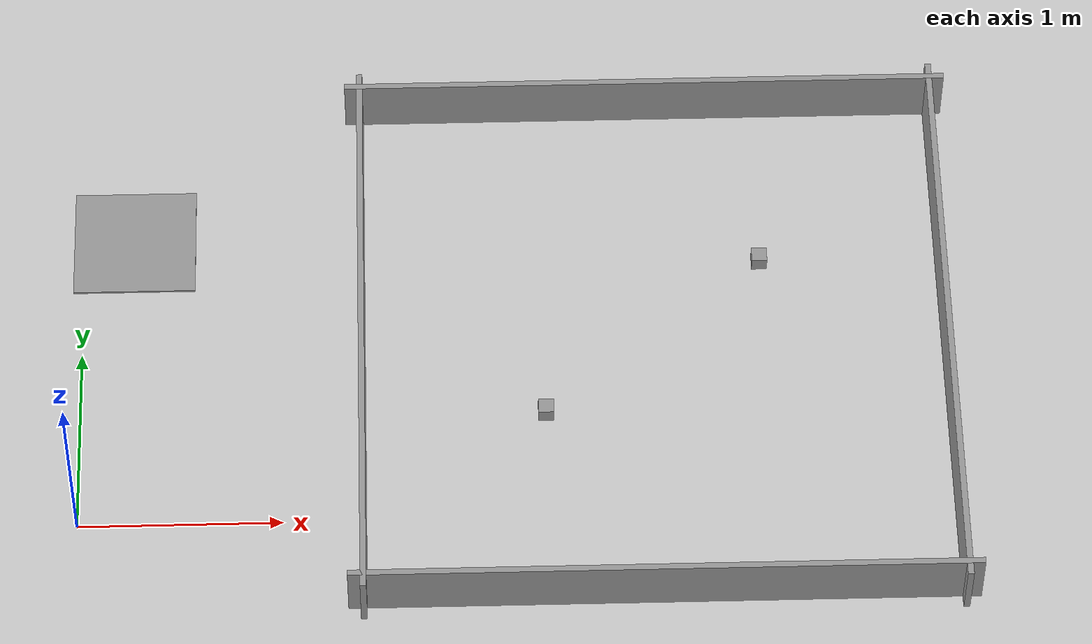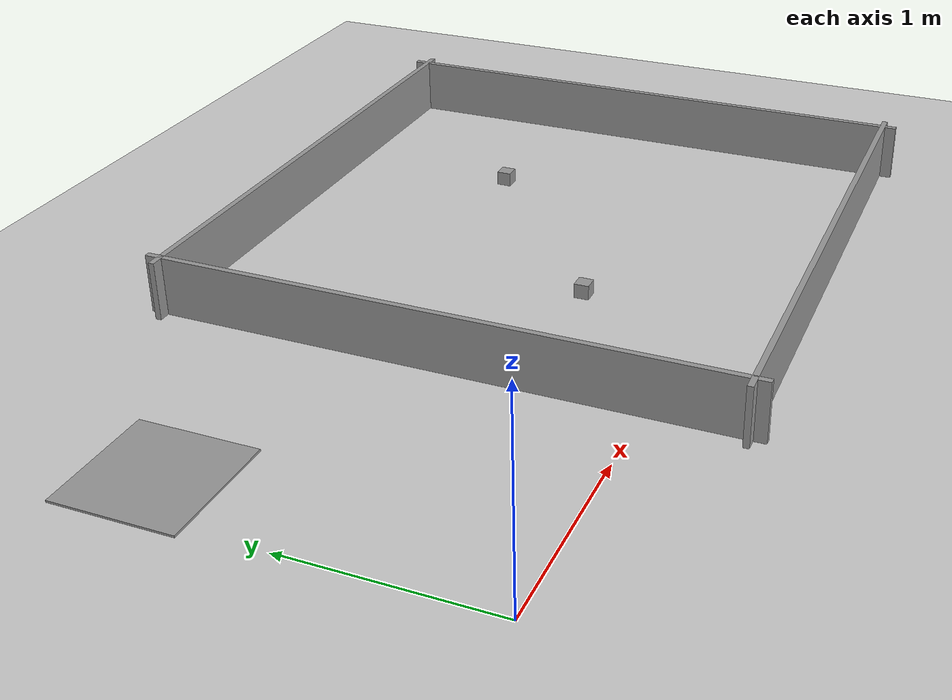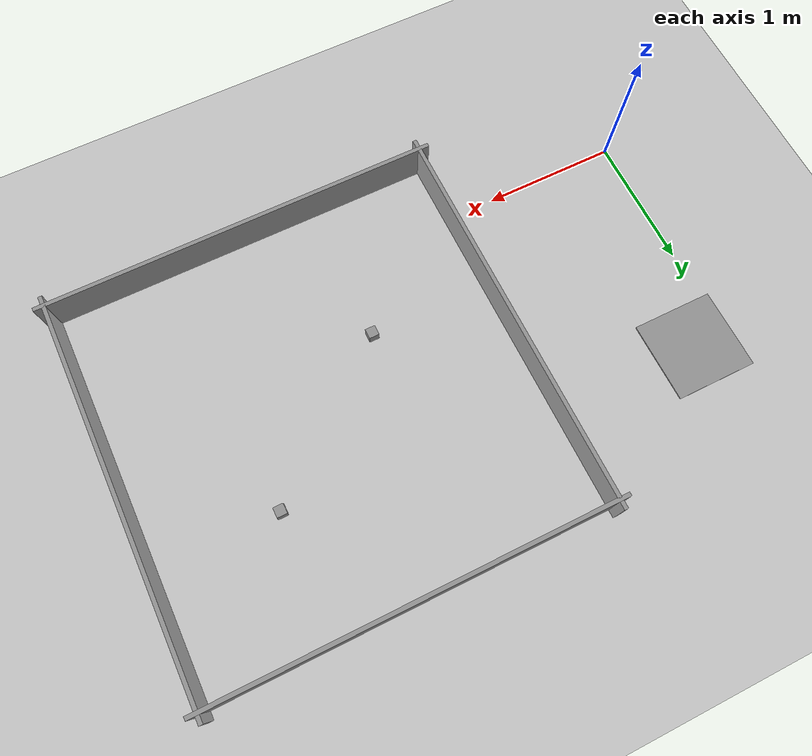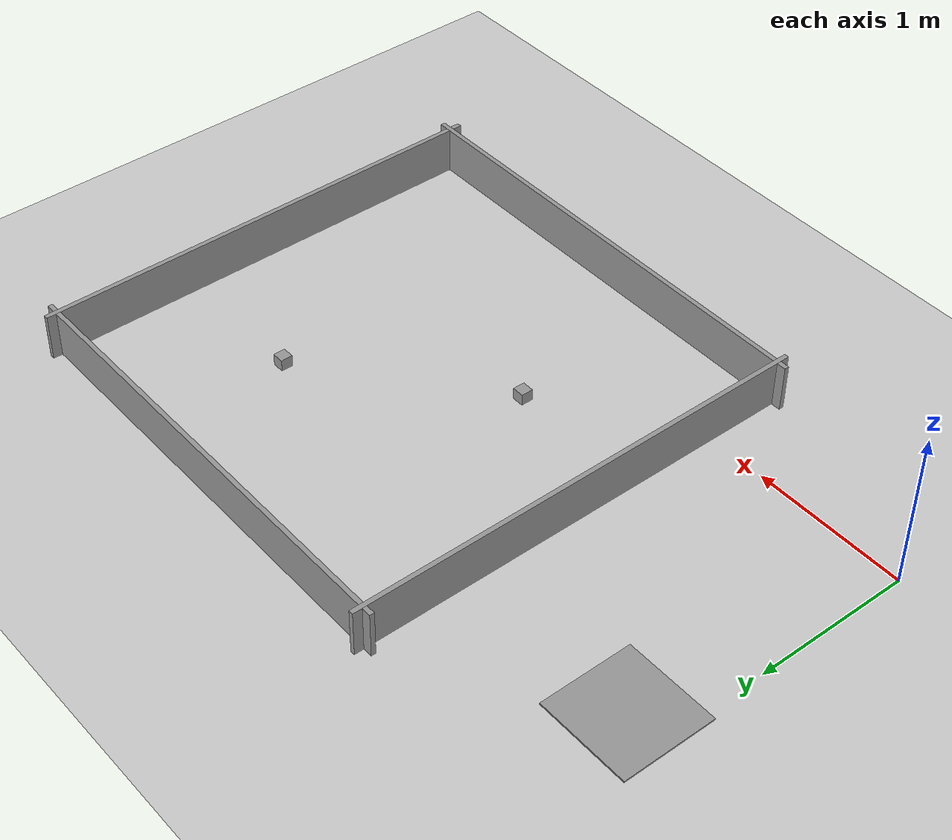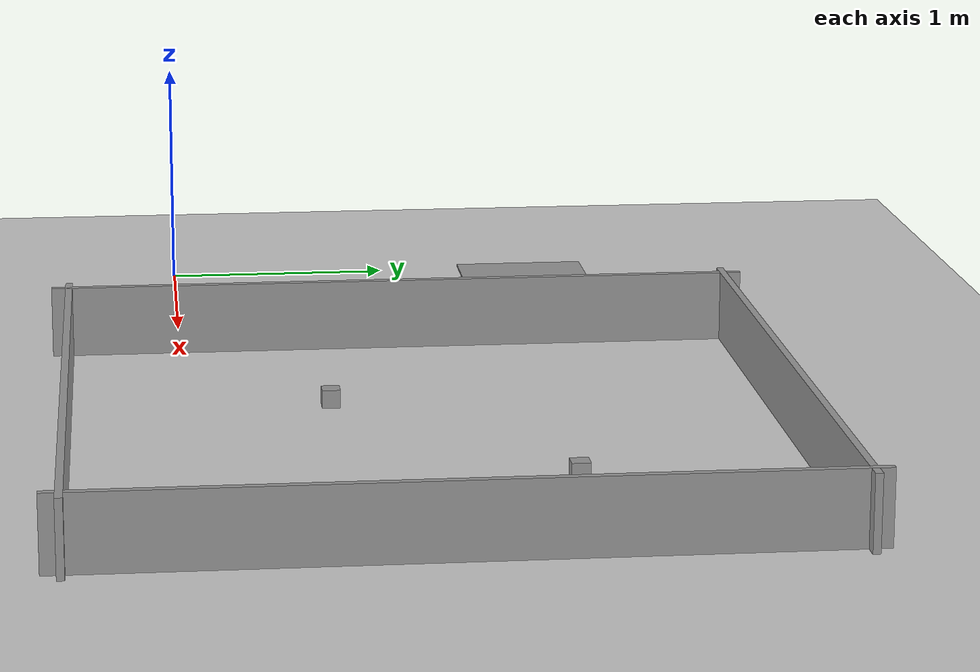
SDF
<sdf version="1.6">
 <world name="default">
  <physics name="default_physics" default="0" type="ode">
   <ode>
    <solver>
     <type>quick</type>
     <iters>100</iters>
     <sor>1</sor>
     <use_dynamic_moi_rescaling>0</use_dynamic_moi_rescaling>
    </solver>
    <constraints>
     <cfm>0</cfm>
     <erp>0.9</erp>
     <contact_max_correcting_vel>0.1</contact_max_correcting_vel>
     <contact_surface_layer>0</contact_surface_layer>
    </constraints>
   </ode>
   <real_time_update_rate>1000</real_time_update_rate>
   <max_step_size>0.001</max_step_size>
   <real_time_factor>1</real_time_factor>
  </physics>
  <scene>
   <sky><clouds><speed>12</speed></clouds></sky>
   <ambient>0.4 0.4 0.4 1</ambient>
   <background>0.25 0.25 0.25 1</background>
   <shadows>1</shadows>
  </scene>
  <model name="ground_plane">
   <static>1</static>
   <link name="link">
    <collision name="collision">
     <geometry><plane><normal>0 0 1</normal><size>5000 5000</size></plane></geometry>
     <surface><friction><ode><mu>1</mu><mu2>1</mu2></ode></friction></surface>
    </collision>
    <visual name="runway">
     <pose>0 0 0.005 0 -0 0</pose>
     <cast_shadows>0</cast_shadows>
     <geometry><plane><normal>0 0 1</normal><size>1829 45</size></plane></geometry>
     <material>
      <script><uri>file://media/materials/scripts/gazebo.material</uri><name>Gazebo/Runway</name></script>
     </material>
    </visual>
    <visual name="grass">
     <pose>0 0 -0.1 0 -0 0</pose>
     <cast_shadows>0</cast_shadows>
     <geometry><plane><normal>0 0 1</normal><size>5000 5000</size></plane></geometry>
     <material>
      <script><uri>file://media/materials/scripts/gazebo.material</uri><name>Gazebo/Grass</name></script>
     </material>
    </visual>
   </link>
  </model>
  <light name="sun" type="directional">
   <pose>0 0 10 0 -0 0</pose>
   <diffuse>0.8 0.8 0.8 1</diffuse>
   <specular>0.2 0.2 0.2 1</specular>
   <attenuation>
    <range>1000</range>
    <constant>0.9</constant>
    <linear>0.01</linear>
    <quadratic>0.001</quadratic>
   </attenuation>
   <direction>-0.5 0.1 -0.9</direction>
  </light>
  <gravity>0 0 -9.8</gravity>
  <magnetic_field>6e-06 2.3e-05 -4.2e-05</magnetic_field>
  <atmosphere type="adiabatic"/>
  <spherical_coordinates>
   <surface_model>EARTH_WGS84</surface_model>
   <latitude_deg>0</latitude_deg>
   <longitude_deg>0</longitude_deg>
   <elevation>0</elevation>
   <heading_deg>0</heading_deg>
  </spherical_coordinates>
  <model name="arena">
   <pose>2.83942 0.968942 0 0 -0 0</pose>
   <link name="Wall_10">
    <collision name="Wall_10_Collision">
     <geometry><box><size>3.048 0.03 0.304</size></box></geometry>
     <pose>0 0 0.152 0 -0 0</pose>
    </collision>
    <visual name="Wall_10_Visual">
     <pose>0 0 0.152 0 -0 0</pose>
     <geometry><box><size>3.048 0.03 0.304</size></box></geometry>
     <material>
      <script><uri>file://media/materials/scripts/gazebo.material</uri><name>Gazebo/Grey</name></script>
      <ambient>1 1 1 1</ambient>
     </material>
     <meta><layer>0</layer></meta>
    </visual>
    <pose>0 1.449 0 0 -0 3.14159</pose>
   </link>
   <link name="Wall_12">
    <collision name="Wall_12_Collision">
     <geometry><box><size>3.048 0.03 0.304</size></box></geometry>
     <pose>0 0 0.152 0 -0 0</pose>
    </collision>
    <visual name="Wall_12_Visual">
     <pose>0 0 0.152 0 -0 0</pose>
     <geometry><box><size>3.048 0.03 0.304</size></box></geometry>
     <material>
      <script><uri>file://media/materials/scripts/gazebo.material</uri><name>Gazebo/Grey</name></script>
      <ambient>1 1 1 1</ambient>
     </material>
     <meta><layer>0</layer></meta>
    </visual>
    <pose>-1.449 0 0 0 -0 -1.5708</pose>
   </link>
   <link name="Wall_14">
    <collision name="Wall_14_Collision">
     <geometry><box><size>3.048 0.03 0.304</size></box></geometry>
     <pose>0 0 0.152 0 -0 0</pose>
    </collision>
    <visual name="Wall_14_Visual">
     <pose>0 0 0.152 0 -0 0</pose>
     <geometry><box><size>3.048 0.03 0.304</size></box></geometry>
     <material>
      <script><uri>file://media/materials/scripts/gazebo.material</uri><name>Gazebo/Grey</name></script>
      <ambient>1 1 1 1</ambient>
     </material>
     <meta><layer>0</layer></meta>
    </visual>
    <pose>0 -1.449 0 0 -0 0</pose>
   </link>
   <link name="Wall_8">
    <collision name="Wall_8_Collision">
     <geometry><box><size>3.048 0.03 0.304</size></box></geometry>
     <pose>0 0 0.152 0 -0 0</pose>
    </collision>
    <visual name="Wall_8_Visual">
     <pose>0 0 0.152 0 -0 0</pose>
     <geometry><box><size>3.048 0.03 0.304</size></box></geometry>
     <material>
      <script><uri>file://media/materials/scripts/gazebo.material</uri><name>Gazebo/Grey</name></script>
      <ambient>1 1 1 1</ambient>
     </material>
     <meta><layer>0</layer></meta>
    </visual>
    <pose>1.449 0 0 0 -0 1.5708</pose>
   </link>
   <static>1</static>
  </model>
  <model name="grid_box">
   <link name="link_1">
    <inertial>
     <mass>1</mass>
     <inertia>
      <ixx>0.166667</ixx>
      <ixy>0</ixy>
      <ixz>0</ixz>
      <iyy>0.166667</iyy>
      <iyz>0</iyz>
      <izz>0.166667</izz>
     </inertia>
    </inertial>
    <visual name="visual">
     <geometry><box><size>0.0762 0.0762 0.0762</size></box></geometry>
     <material>
      <lighting>1</lighting>
      <script><uri>file://media/materials/scripts/gazebo.material</uri><name>Gazebo/Grey</name></script>
      <shader type="pixel"><normal_map>__default__</normal_map></shader>
      <ambient>0.3 0.3 0.3 1</ambient>
      <diffuse>0.7 0.7 0.7 1</diffuse>
      <specular>0.01 0.01 0.01 1</specular>
      <emissive>0 0 0 1</emissive>
     </material>
    </visual>
    <collision name="collision">
     <geometry><box><size>0.0762 0.0762 0.0762</size></box></geometry>
     <surface>
      <friction>
       <ode><mu>1</mu><mu2>1</mu2><fdir1>0 0 0</fdir1><slip1>0</slip1><slip2>0</slip2></ode>
       <torsional>
        <coefficient>1</coefficient>
        <patch_radius>0</patch_radius>
        <surface_radius>0</surface_radius>
        <use_patch_radius>1</use_patch_radius>
        <ode><slip>0</slip></ode>
       </torsional>
      </friction>
      <bounce><restitution_coefficient>0</restitution_coefficient><threshold>1e+06</threshold></bounce>
      <contact>
       <collide_without_contact>0</collide_without_contact>
       <collide_without_contact_bitmask>1</collide_without_contact_bitmask>
       <collide_bitmask>1</collide_bitmask>
       <ode>
        <soft_cfm>0</soft_cfm>
        <soft_erp>0.2</soft_erp>
        <kp>1e+13</kp>
        <kd>1</kd>
        <max_vel>0.01</max_vel>
        <min_depth>0</min_depth>
       </ode>
       <bullet>
        <split_impulse>1</split_impulse>
        <split_impulse_penetration_threshold>-0.01</split_impulse_penetration_threshold>
        <soft_cfm>0</soft_cfm>
        <soft_erp>0.2</soft_erp>
        <kp>1e+13</kp>
        <kd>1</kd>
       </bullet>
      </contact>
     </surface>
    </collision>
   </link>
   <static>0</static>
   <pose>2.29412 0.603632 0.0381 2e-06 -1e-05 3e-06</pose>
  </model>
  <model name="grid_box_0">
   <link name="link_1">
    <inertial>
     <mass>1</mass>
     <inertia>
      <ixx>0.166667</ixx>
      <ixy>0</ixy>
      <ixz>0</ixz>
      <iyy>0.166667</iyy>
      <iyz>0</iyz>
      <izz>0.166667</izz>
     </inertia>
    </inertial>
    <visual name="visual">
     <geometry><box><size>0.0762 0.0762 0.0762</size></box></geometry>
     <material>
      <lighting>1</lighting>
      <script><uri>file://media/materials/scripts/gazebo.material</uri><name>Gazebo/Grey</name></script>
      <shader type="pixel"><normal_map>__default__</normal_map></shader>
      <ambient>0.3 0.3 0.3 1</ambient>
      <diffuse>0.7 0.7 0.7 1</diffuse>
      <specular>0.01 0.01 0.01 1</specular>
      <emissive>0 0 0 1</emissive>
     </material>
    </visual>
    <collision name="collision">
     <geometry><box><size>0.0762 0.0762 0.0762</size></box></geometry>
     <surface>
      <friction>
       <ode><mu>1</mu><mu2>1</mu2><fdir1>0 0 0</fdir1><slip1>0</slip1><slip2>0</slip2></ode>
       <torsional>
        <coefficient>1</coefficient>
        <patch_radius>0</patch_radius>
        <surface_radius>0</surface_radius>
        <use_patch_radius>1</use_patch_radius>
        <ode><slip>0</slip></ode>
       </torsional>
      </friction>
      <bounce><restitution_coefficient>0</restitution_coefficient><threshold>1e+06</threshold></bounce>
      <contact>
       <collide_without_contact>0</collide_without_contact>
       <collide_without_contact_bitmask>1</collide_without_contact_bitmask>
       <collide_bitmask>1</collide_bitmask>
       <ode>
        <soft_cfm>0</soft_cfm>
        <soft_erp>0.2</soft_erp>
        <kp>1e+13</kp>
        <kd>1</kd>
        <max_vel>0.01</max_vel>
        <min_depth>0</min_depth>
       </ode>
       <bullet>
        <split_impulse>1</split_impulse>
        <split_impulse_penetration_threshold>-0.01</split_impulse_penetration_threshold>
        <soft_cfm>0</soft_cfm>
        <soft_erp>0.2</soft_erp>
        <kp>1e+13</kp>
        <kd>1</kd>
       </bullet>
      </contact>
     </surface>
    </collision>
   </link>
   <static>0</static>
   <pose>3.38726 1.48887 0.038101 5e-06 -1.7e-05 -1e-06</pose>
  </model>
  <model name="dropzone">
   <pose>0.249964 1.67996 0 0 -0 0</pose>
   <link name="Wall_17">
    <collision name="Wall_17_Collision">
     <geometry><box><size>0.61 0.6 0.01</size></box></geometry>
     <pose>0 0 0.005 0 -0 0</pose>
    </collision>
    <visual name="Wall_17_Visual">
     <pose>0 0 0.005 0 -0 0</pose>
     <geometry><box><size>0.61 0.6 0.01</size></box></geometry>
     <material>
      <script><uri>file://media/materials/scripts/gazebo.material</uri><name>Gazebo/Grey</name></script>
      <ambient>1 1 1 1</ambient>
     </material>
     <meta><layer>0</layer></meta>
    </visual>
    <pose>0 0 0 0 -0 3.14159</pose>
   </link>
   <static>1</static>
  </model>
 </world>
</sdf>
